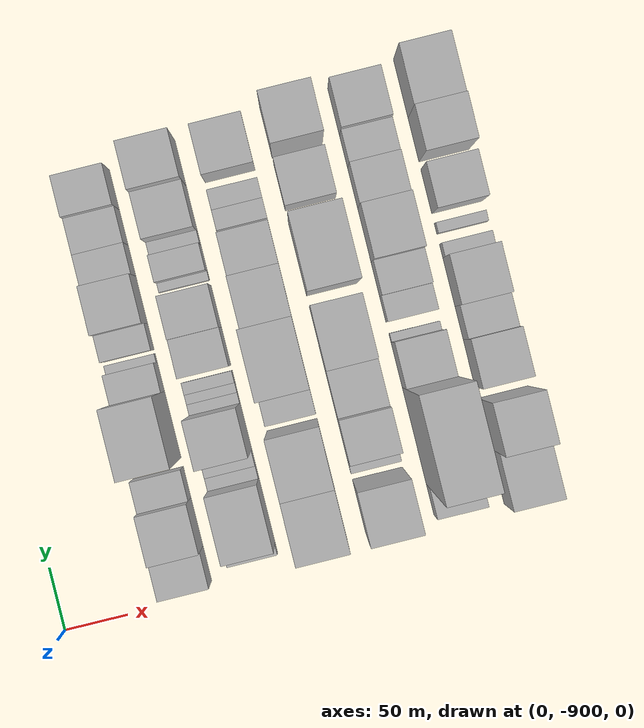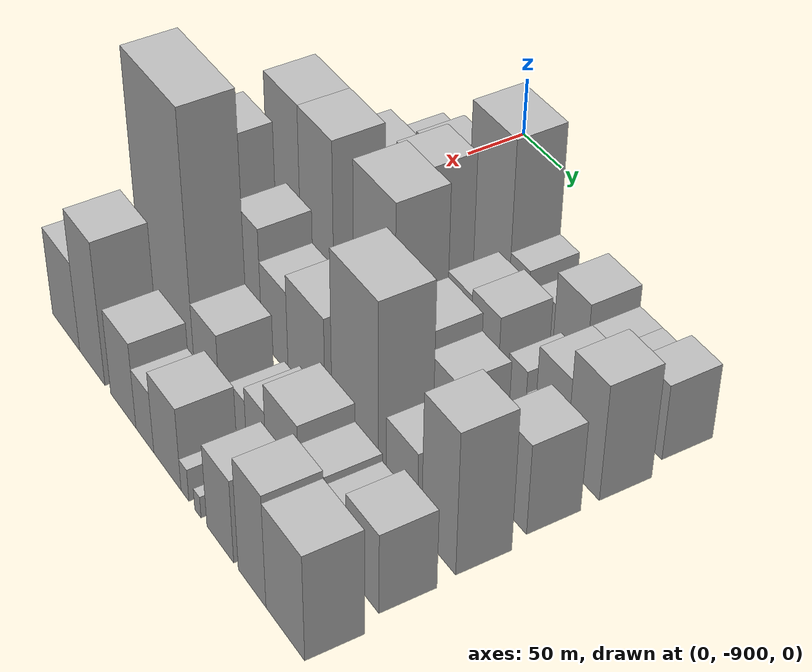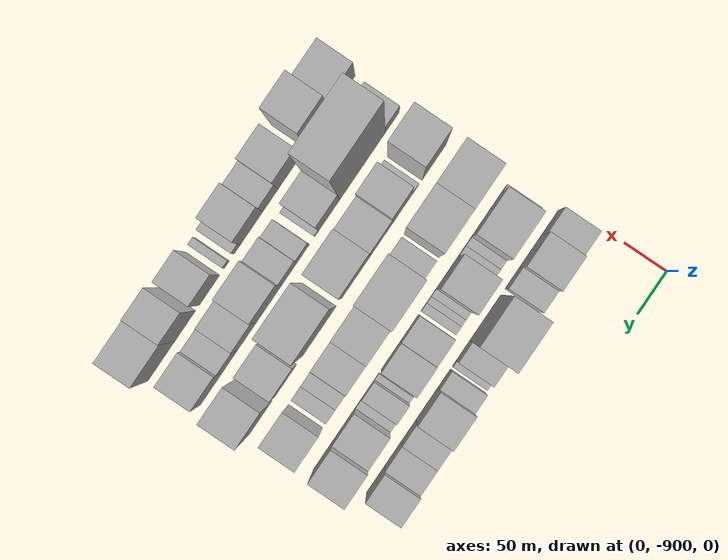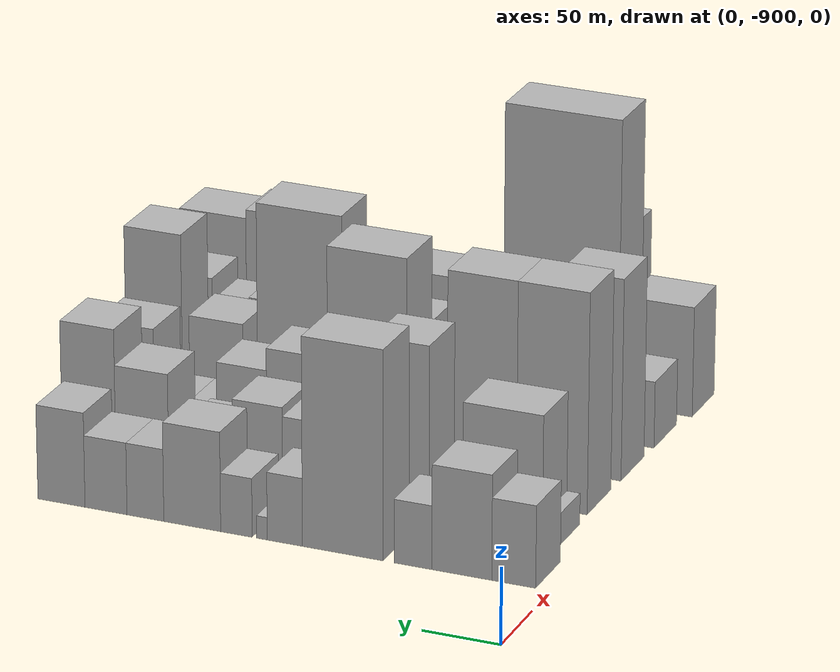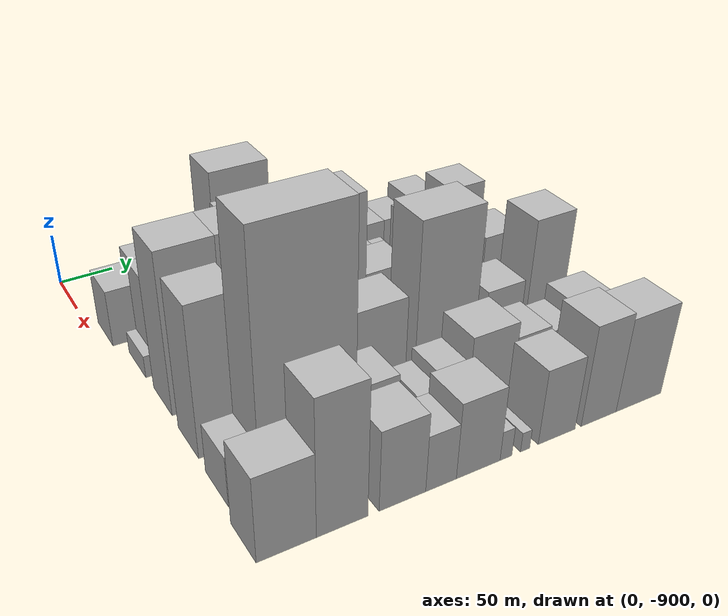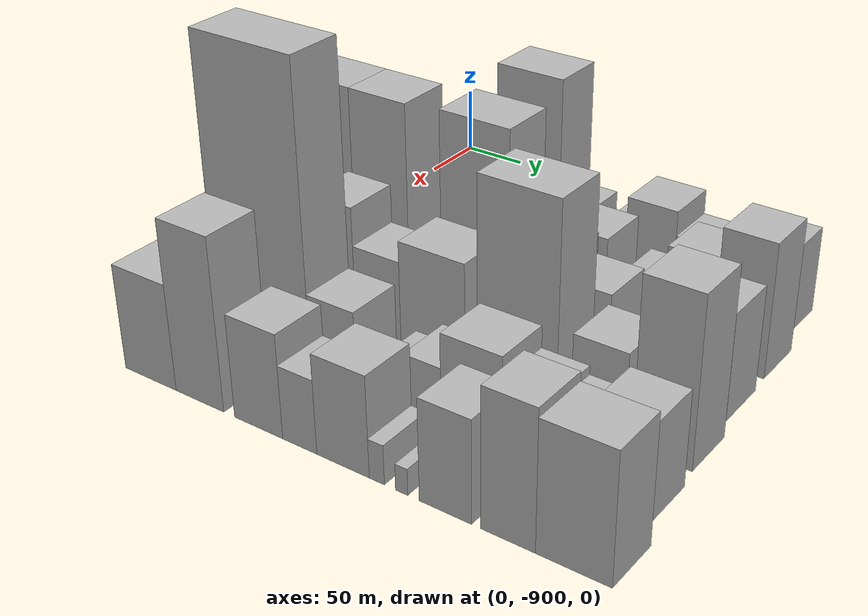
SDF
<sdf version="1.6">
 <world name="default">
  <model name="building_1">
   <static>1</static>
   <pose>100.0000 -875.8655 0 0.000000 0.000000 0.000000</pose>
   <link name="link">
    <pose>0 0 27.00 0 0 0</pose>
    <collision name="collision"><geometry><box><size>40.0000 28.2690 54.0000</size></box></geometry></collision>
    <visual name="visual">
     <cast_shadows>0</cast_shadows>
     <geometry><box><size>40.0000 28.2690 54.0000</size></box></geometry>
     <material>
      <script>
       <uri>model://HANNAS_wall/materials/scripts</uri>
       <uri>model://HANNAS_wall/materials/textures</uri>
       <name>vrc/HANNAS_wall</name>
      </script>
     </material>
    </visual>
   </link>
  </model>
  <model name="building_2">
   <static>1</static>
   <pose>100.0000 -842.3592 0 0.000000 0.000000 0.000000</pose>
   <link name="link">
    <pose>0 0 34.50 0 0 0</pose>
    <collision name="collision"><geometry><box><size>40.0000 38.7436 69.0000</size></box></geometry></collision>
    <visual name="visual">
     <cast_shadows>0</cast_shadows>
     <geometry><box><size>40.0000 38.7436 69.0000</size></box></geometry>
     <material>
      <script>
       <uri>model://HANNAS_wall/materials/scripts</uri>
       <uri>model://HANNAS_wall/materials/textures</uri>
       <name>vrc/HANNAS_wall</name>
      </script>
     </material>
    </visual>
   </link>
  </model>
  <model name="building_3">
   <static>1</static>
   <pose>100.0000 -810.6774 0 0.000000 0.000000 0.000000</pose>
   <link name="link">
    <pose>0 0 21.00 0 0 0</pose>
    <collision name="collision"><geometry><box><size>40.0000 24.6200 42.0000</size></box></geometry></collision>
    <visual name="visual">
     <cast_shadows>0</cast_shadows>
     <geometry><box><size>40.0000 24.6200 42.0000</size></box></geometry>
     <material>
      <script>
       <uri>model://HANNAS_wall/materials/scripts</uri>
       <uri>model://HANNAS_wall/materials/textures</uri>
       <name>vrc/HANNAS_wall</name>
      </script>
     </material>
    </visual>
   </link>
  </model>
  <model name="building_4">
   <static>1</static>
   <pose>100.0000 -764.7874 0 0.000000 0.000000 0.000000</pose>
   <link name="link">
    <pose>0 0 69.00 0 0 0</pose>
    <collision name="collision"><geometry><box><size>40.0000 53.1601 138.0000</size></box></geometry></collision>
    <visual name="visual">
     <cast_shadows>0</cast_shadows>
     <geometry><box><size>40.0000 53.1601 138.0000</size></box></geometry>
     <material>
      <script>
       <uri>model://HANNAS_wall/materials/scripts</uri>
       <uri>model://HANNAS_wall/materials/textures</uri>
       <name>vrc/HANNAS_wall</name>
      </script>
     </material>
    </visual>
   </link>
  </model>
  <model name="building_5">
   <static>1</static>
   <pose>100.0000 -726.5700 0 0.000000 0.000000 0.000000</pose>
   <link name="link">
    <pose>0 0 22.50 0 0 0</pose>
    <collision name="collision"><geometry><box><size>40.0000 23.2748 45.0000</size></box></geometry></collision>
    <visual name="visual">
     <cast_shadows>0</cast_shadows>
     <geometry><box><size>40.0000 23.2748 45.0000</size></box></geometry>
     <material>
      <script>
       <uri>model://HANNAS_wall/materials/scripts</uri>
       <uri>model://HANNAS_wall/materials/textures</uri>
       <name>vrc/HANNAS_wall</name>
      </script>
     </material>
    </visual>
   </link>
  </model>
  <model name="building_6">
   <static>1</static>
   <pose>100.0000 -711.4484 0 0.000000 0.000000 0.000000</pose>
   <link name="link">
    <pose>0 0 7.50 0 0 0</pose>
    <collision name="collision"><geometry><box><size>40.0000 6.9683 15.0000</size></box></geometry></collision>
    <visual name="visual">
     <cast_shadows>0</cast_shadows>
     <geometry><box><size>40.0000 6.9683 15.0000</size></box></geometry>
     <material>
      <script>
       <uri>model://HANNAS_wall/materials/scripts</uri>
       <uri>model://HANNAS_wall/materials/textures</uri>
       <name>vrc/HANNAS_wall</name>
      </script>
     </material>
    </visual>
   </link>
  </model>
  <model name="building_7">
   <static>1</static>
   <pose>100.0000 -694.4781 0 0.000000 0.000000 0.000000</pose>
   <link name="link">
    <pose>0 0 19.50 0 0 0</pose>
    <collision name="collision"><geometry><box><size>40.0000 20.9722 39.0000</size></box></geometry></collision>
    <visual name="visual">
     <cast_shadows>0</cast_shadows>
     <geometry><box><size>40.0000 20.9722 39.0000</size></box></geometry>
     <material>
      <script>
       <uri>model://HANNAS_wall/materials/scripts</uri>
       <uri>model://HANNAS_wall/materials/textures</uri>
       <name>vrc/HANNAS_wall</name>
      </script>
     </material>
    </visual>
   </link>
  </model>
  <model name="building_8">
   <static>1</static>
   <pose>100.0000 -664.9663 0 0.000000 0.000000 0.000000</pose>
   <link name="link">
    <pose>0 0 33.00 0 0 0</pose>
    <collision name="collision"><geometry><box><size>40.0000 38.0515 66.0000</size></box></geometry></collision>
    <visual name="visual">
     <cast_shadows>0</cast_shadows>
     <geometry><box><size>40.0000 38.0515 66.0000</size></box></geometry>
     <material>
      <script>
       <uri>model://HANNAS_wall/materials/scripts</uri>
       <uri>model://HANNAS_wall/materials/textures</uri>
       <name>vrc/HANNAS_wall</name>
      </script>
     </material>
    </visual>
   </link>
  </model>
  <model name="building_9">
   <static>1</static>
   <pose>100.0000 -633.5444 0 0.000000 0.000000 0.000000</pose>
   <link name="link">
    <pose>0 0 24.00 0 0 0</pose>
    <collision name="collision"><geometry><box><size>40.0000 24.7922 48.0000</size></box></geometry></collision>
    <visual name="visual">
     <cast_shadows>0</cast_shadows>
     <geometry><box><size>40.0000 24.7922 48.0000</size></box></geometry>
     <material>
      <script>
       <uri>model://HANNAS_wall/materials/scripts</uri>
       <uri>model://HANNAS_wall/materials/textures</uri>
       <name>vrc/HANNAS_wall</name>
      </script>
     </material>
    </visual>
   </link>
  </model>
  <model name="building_10">
   <static>1</static>
   <pose>100.0000 -606.9436 0 0.000000 0.000000 0.000000</pose>
   <link name="link">
    <pose>0 0 24.00 0 0 0</pose>
    <collision name="collision"><geometry><box><size>40.0000 28.4095 48.0000</size></box></geometry></collision>
    <visual name="visual">
     <cast_shadows>0</cast_shadows>
     <geometry><box><size>40.0000 28.4095 48.0000</size></box></geometry>
     <material>
      <script>
       <uri>model://HANNAS_wall/materials/scripts</uri>
       <uri>model://HANNAS_wall/materials/textures</uri>
       <name>vrc/HANNAS_wall</name>
      </script>
     </material>
    </visual>
   </link>
  </model>
  <model name="building_11">
   <static>1</static>
   <pose>100.0000 -576.7220 0 0.000000 0.000000 0.000000</pose>
   <link name="link">
    <pose>0 0 31.50 0 0 0</pose>
    <collision name="collision"><geometry><box><size>40.0000 32.0336 63.0000</size></box></geometry></collision>
    <visual name="visual">
     <cast_shadows>0</cast_shadows>
     <geometry><box><size>40.0000 32.0336 63.0000</size></box></geometry>
     <material>
      <script>
       <uri>model://HANNAS_wall/materials/scripts</uri>
       <uri>model://HANNAS_wall/materials/textures</uri>
       <name>vrc/HANNAS_wall</name>
      </script>
     </material>
    </visual>
   </link>
  </model>
  <model name="building_53">
   <static>1</static>
   <pose>155.0000 -876.6834 0 0.000000 0.000000 0.000000</pose>
   <link name="link">
    <pose>0 0 10.50 0 0 0</pose>
    <collision name="collision"><geometry><box><size>40.0000 8.6332 21.0000</size></box></geometry></collision>
    <visual name="visual">
     <cast_shadows>0</cast_shadows>
     <geometry><box><size>40.0000 8.6332 21.0000</size></box></geometry>
     <material>
      <script>
       <uri>model://HANNAS_wall/materials/scripts</uri>
       <uri>model://HANNAS_wall/materials/textures</uri>
       <name>vrc/HANNAS_wall</name>
      </script>
     </material>
    </visual>
   </link>
  </model>
  <model name="building_54">
   <static>1</static>
   <pose>155.0000 -846.3705 0 0.000000 0.000000 0.000000</pose>
   <link name="link">
    <pose>0 0 43.50 0 0 0</pose>
    <collision name="collision"><geometry><box><size>40.0000 51.9926 87.0000</size></box></geometry></collision>
    <visual name="visual">
     <cast_shadows>0</cast_shadows>
     <geometry><box><size>40.0000 51.9926 87.0000</size></box></geometry>
     <material>
      <script>
       <uri>model://HANNAS_wall/materials/scripts</uri>
       <uri>model://HANNAS_wall/materials/textures</uri>
       <name>vrc/HANNAS_wall</name>
      </script>
     </material>
    </visual>
   </link>
  </model>
  <model name="building_55">
   <static>1</static>
   <pose>155.0000 -815.2840 0 0.000000 0.000000 0.000000</pose>
   <link name="link">
    <pose>0 0 12.00 0 0 0</pose>
    <collision name="collision"><geometry><box><size>40.0000 10.1804 24.0000</size></box></geometry></collision>
    <visual name="visual">
     <cast_shadows>0</cast_shadows>
     <geometry><box><size>40.0000 10.1804 24.0000</size></box></geometry>
     <material>
      <script>
       <uri>model://HANNAS_wall/materials/scripts</uri>
       <uri>model://HANNAS_wall/materials/textures</uri>
       <name>vrc/HANNAS_wall</name>
      </script>
     </material>
    </visual>
   </link>
  </model>
  <model name="building_56">
   <static>1</static>
   <pose>155.0000 -804.1719 0 0.000000 0.000000 0.000000</pose>
   <link name="link">
    <pose>0 0 13.50 0 0 0</pose>
    <collision name="collision"><geometry><box><size>40.0000 12.0438 27.0000</size></box></geometry></collision>
    <visual name="visual">
     <cast_shadows>0</cast_shadows>
     <geometry><box><size>40.0000 12.0438 27.0000</size></box></geometry>
     <material>
      <script>
       <uri>model://HANNAS_wall/materials/scripts</uri>
       <uri>model://HANNAS_wall/materials/textures</uri>
       <name>vrc/HANNAS_wall</name>
      </script>
     </material>
    </visual>
   </link>
  </model>
  <model name="building_57">
   <static>1</static>
   <pose>155.0000 -779.5093 0 0.000000 0.000000 0.000000</pose>
   <link name="link">
    <pose>0 0 60.00 0 0 0</pose>
    <collision name="collision"><geometry><box><size>40.0000 37.2814 120.0000</size></box></geometry></collision>
    <visual name="visual">
     <cast_shadows>0</cast_shadows>
     <geometry><box><size>40.0000 37.2814 120.0000</size></box></geometry>
     <material>
      <script>
       <uri>model://HANNAS_wall/materials/scripts</uri>
       <uri>model://HANNAS_wall/materials/textures</uri>
       <name>vrc/HANNAS_wall</name>
      </script>
     </material>
    </visual>
   </link>
  </model>
  <model name="building_58">
   <static>1</static>
   <pose>155.0000 -756.5754 0 0.000000 0.000000 0.000000</pose>
   <link name="link">
    <pose>0 0 9.00 0 0 0</pose>
    <collision name="collision"><geometry><box><size>40.0000 8.5863 18.0000</size></box></geometry></collision>
    <visual name="visual">
     <cast_shadows>0</cast_shadows>
     <geometry><box><size>40.0000 8.5863 18.0000</size></box></geometry>
     <material>
      <script>
       <uri>model://HANNAS_wall/materials/scripts</uri>
       <uri>model://HANNAS_wall/materials/textures</uri>
       <name>vrc/HANNAS_wall</name>
      </script>
     </material>
    </visual>
   </link>
  </model>
  <model name="building_59">
   <static>1</static>
   <pose>155.0000 -748.4291 0 0.000000 0.000000 0.000000</pose>
   <link name="link">
    <pose>0 0 9.00 0 0 0</pose>
    <collision name="collision"><geometry><box><size>40.0000 7.7064 18.0000</size></box></geometry></collision>
    <visual name="visual">
     <cast_shadows>0</cast_shadows>
     <geometry><box><size>40.0000 7.7064 18.0000</size></box></geometry>
     <material>
      <script>
       <uri>model://HANNAS_wall/materials/scripts</uri>
       <uri>model://HANNAS_wall/materials/textures</uri>
       <name>vrc/HANNAS_wall</name>
      </script>
     </material>
    </visual>
   </link>
  </model>
  <model name="building_60">
   <static>1</static>
   <pose>155.0000 -739.8344 0 0.000000 0.000000 0.000000</pose>
   <link name="link">
    <pose>0 0 10.50 0 0 0</pose>
    <collision name="collision"><geometry><box><size>40.0000 9.4830 21.0000</size></box></geometry></collision>
    <visual name="visual">
     <cast_shadows>0</cast_shadows>
     <geometry><box><size>40.0000 9.4830 21.0000</size></box></geometry>
     <material>
      <script>
       <uri>model://HANNAS_wall/materials/scripts</uri>
       <uri>model://HANNAS_wall/materials/textures</uri>
       <name>vrc/HANNAS_wall</name>
      </script>
     </material>
    </visual>
   </link>
  </model>
  <model name="building_61">
   <static>1</static>
   <pose>155.0000 -715.9722 0 0.000000 0.000000 0.000000</pose>
   <link name="link">
    <pose>0 0 28.50 0 0 0</pose>
    <collision name="collision"><geometry><box><size>40.0000 30.2414 57.0000</size></box></geometry></collision>
    <visual name="visual">
     <cast_shadows>0</cast_shadows>
     <geometry><box><size>40.0000 30.2414 57.0000</size></box></geometry>
     <material>
      <script>
       <uri>model://HANNAS_wall/materials/scripts</uri>
       <uri>model://HANNAS_wall/materials/textures</uri>
       <name>vrc/HANNAS_wall</name>
      </script>
     </material>
    </visual>
   </link>
  </model>
  <model name="building_62">
   <static>1</static>
   <pose>155.0000 -684.0424 0 0.000000 0.000000 0.000000</pose>
   <link name="link">
    <pose>0 0 31.50 0 0 0</pose>
    <collision name="collision"><geometry><box><size>40.0000 33.6181 63.0000</size></box></geometry></collision>
    <visual name="visual">
     <cast_shadows>0</cast_shadows>
     <geometry><box><size>40.0000 33.6181 63.0000</size></box></geometry>
     <material>
      <script>
       <uri>model://HANNAS_wall/materials/scripts</uri>
       <uri>model://HANNAS_wall/materials/textures</uri>
       <name>vrc/HANNAS_wall</name>
      </script>
     </material>
    </visual>
   </link>
  </model>
  <model name="building_63">
   <static>1</static>
   <pose>155.0000 -659.5913 0 0.000000 0.000000 0.000000</pose>
   <link name="link">
    <pose>0 0 7.50 0 0 0</pose>
    <collision name="collision"><geometry><box><size>40.0000 7.2841 15.0000</size></box></geometry></collision>
    <visual name="visual">
     <cast_shadows>0</cast_shadows>
     <geometry><box><size>40.0000 7.2841 15.0000</size></box></geometry>
     <material>
      <script>
       <uri>model://HANNAS_wall/materials/scripts</uri>
       <uri>model://HANNAS_wall/materials/textures</uri>
       <name>vrc/HANNAS_wall</name>
      </script>
     </material>
    </visual>
   </link>
  </model>
  <model name="building_64">
   <static>1</static>
   <pose>155.0000 -645.3218 0 0.000000 0.000000 0.000000</pose>
   <link name="link">
    <pose>0 0 21.00 0 0 0</pose>
    <collision name="collision"><geometry><box><size>40.0000 21.2549 42.0000</size></box></geometry></collision>
    <visual name="visual">
     <cast_shadows>0</cast_shadows>
     <geometry><box><size>40.0000 21.2549 42.0000</size></box></geometry>
     <material>
      <script>
       <uri>model://HANNAS_wall/materials/scripts</uri>
       <uri>model://HANNAS_wall/materials/textures</uri>
       <name>vrc/HANNAS_wall</name>
      </script>
     </material>
    </visual>
   </link>
  </model>
  <model name="building_65">
   <static>1</static>
   <pose>155.0000 -629.2701 0 0.000000 0.000000 0.000000</pose>
   <link name="link">
    <pose>0 0 12.00 0 0 0</pose>
    <collision name="collision"><geometry><box><size>40.0000 10.8485 24.0000</size></box></geometry></collision>
    <visual name="visual">
     <cast_shadows>0</cast_shadows>
     <geometry><box><size>40.0000 10.8485 24.0000</size></box></geometry>
     <material>
      <script>
       <uri>model://HANNAS_wall/materials/scripts</uri>
       <uri>model://HANNAS_wall/materials/textures</uri>
       <name>vrc/HANNAS_wall</name>
      </script>
     </material>
    </visual>
   </link>
  </model>
  <model name="building_66">
   <static>1</static>
   <pose>155.0000 -605.8002 0 0.000000 0.000000 0.000000</pose>
   <link name="link">
    <pose>0 0 36.00 0 0 0</pose>
    <collision name="collision"><geometry><box><size>40.0000 36.0914 72.0000</size></box></geometry></collision>
    <visual name="visual">
     <cast_shadows>0</cast_shadows>
     <geometry><box><size>40.0000 36.0914 72.0000</size></box></geometry>
     <material>
      <script>
       <uri>model://HANNAS_wall/materials/scripts</uri>
       <uri>model://HANNAS_wall/materials/textures</uri>
       <name>vrc/HANNAS_wall</name>
      </script>
     </material>
    </visual>
   </link>
  </model>
  <model name="building_67">
   <static>1</static>
   <pose>155.0000 -569.3853 0 0.000000 0.000000 0.000000</pose>
   <link name="link">
    <pose>0 0 48.00 0 0 0</pose>
    <collision name="collision"><geometry><box><size>40.0000 36.7385 96.0000</size></box></geometry></collision>
    <visual name="visual">
     <cast_shadows>0</cast_shadows>
     <geometry><box><size>40.0000 36.7385 96.0000</size></box></geometry>
     <material>
      <script>
       <uri>model://HANNAS_wall/materials/scripts</uri>
       <uri>model://HANNAS_wall/materials/textures</uri>
       <name>vrc/HANNAS_wall</name>
      </script>
     </material>
    </visual>
   </link>
  </model>
  <model name="building_112">
   <static>1</static>
   <pose>210.0000 -856.6553 0 0.000000 0.000000 0.000000</pose>
   <link name="link">
    <pose>0 0 73.50 0 0 0</pose>
    <collision name="collision"><geometry><box><size>40.0000 46.6894 147.0000</size></box></geometry></collision>
    <visual name="visual">
     <cast_shadows>0</cast_shadows>
     <geometry><box><size>40.0000 46.6894 147.0000</size></box></geometry>
     <material>
      <script>
       <uri>model://HANNAS_wall/materials/scripts</uri>
       <uri>model://HANNAS_wall/materials/textures</uri>
       <name>vrc/HANNAS_wall</name>
      </script>
     </material>
    </visual>
   </link>
  </model>
  <model name="building_113">
   <static>1</static>
   <pose>210.0000 -810.2821 0 0.000000 0.000000 0.000000</pose>
   <link name="link">
    <pose>0 0 73.50 0 0 0</pose>
    <collision name="collision"><geometry><box><size>40.0000 46.0571 147.0000</size></box></geometry></collision>
    <visual name="visual">
     <cast_shadows>0</cast_shadows>
     <geometry><box><size>40.0000 46.0571 147.0000</size></box></geometry>
     <material>
      <script>
       <uri>model://HANNAS_wall/materials/scripts</uri>
       <uri>model://HANNAS_wall/materials/textures</uri>
       <name>vrc/HANNAS_wall</name>
      </script>
     </material>
    </visual>
   </link>
  </model>
  <model name="building_114">
   <static>1</static>
   <pose>210.0000 -771.2694 0 0.000000 0.000000 0.000000</pose>
   <link name="link">
    <pose>0 0 21.00 0 0 0</pose>
    <collision name="collision"><geometry><box><size>40.0000 21.9683 42.0000</size></box></geometry></collision>
    <visual name="visual">
     <cast_shadows>0</cast_shadows>
     <geometry><box><size>40.0000 21.9683 42.0000</size></box></geometry>
     <material>
      <script>
       <uri>model://HANNAS_wall/materials/scripts</uri>
       <uri>model://HANNAS_wall/materials/textures</uri>
       <name>vrc/HANNAS_wall</name>
      </script>
     </material>
    </visual>
   </link>
  </model>
  <model name="building_115">
   <static>1</static>
   <pose>210.0000 -733.6573 0 0.000000 0.000000 0.000000</pose>
   <link name="link">
    <pose>0 0 75.00 0 0 0</pose>
    <collision name="collision"><geometry><box><size>40.0000 53.2559 150.0000</size></box></geometry></collision>
    <visual name="visual">
     <cast_shadows>0</cast_shadows>
     <geometry><box><size>40.0000 53.2559 150.0000</size></box></geometry>
     <material>
      <script>
       <uri>model://HANNAS_wall/materials/scripts</uri>
       <uri>model://HANNAS_wall/materials/textures</uri>
       <name>vrc/HANNAS_wall</name>
      </script>
     </material>
    </visual>
   </link>
  </model>
  <model name="building_116">
   <static>1</static>
   <pose>210.0000 -686.3649 0 0.000000 0.000000 0.000000</pose>
   <link name="link">
    <pose>0 0 37.50 0 0 0</pose>
    <collision name="collision"><geometry><box><size>40.0000 41.3288 75.0000</size></box></geometry></collision>
    <visual name="visual">
     <cast_shadows>0</cast_shadows>
     <geometry><box><size>40.0000 41.3288 75.0000</size></box></geometry>
     <material>
      <script>
       <uri>model://HANNAS_wall/materials/scripts</uri>
       <uri>model://HANNAS_wall/materials/textures</uri>
       <name>vrc/HANNAS_wall</name>
      </script>
     </material>
    </visual>
   </link>
  </model>
  <model name="building_117">
   <static>1</static>
   <pose>210.0000 -648.6435 0 0.000000 0.000000 0.000000</pose>
   <link name="link">
    <pose>0 0 30.00 0 0 0</pose>
    <collision name="collision"><geometry><box><size>40.0000 34.1139 60.0000</size></box></geometry></collision>
    <visual name="visual">
     <cast_shadows>0</cast_shadows>
     <geometry><box><size>40.0000 34.1139 60.0000</size></box></geometry>
     <material>
      <script>
       <uri>model://HANNAS_wall/materials/scripts</uri>
       <uri>model://HANNAS_wall/materials/textures</uri>
       <name>vrc/HANNAS_wall</name>
      </script>
     </material>
    </visual>
   </link>
  </model>
  <model name="building_118">
   <static>1</static>
   <pose>210.0000 -620.5166 0 0.000000 0.000000 0.000000</pose>
   <link name="link">
    <pose>0 0 15.00 0 0 0</pose>
    <collision name="collision"><geometry><box><size>40.0000 16.1400 30.0000</size></box></geometry></collision>
    <visual name="visual">
     <cast_shadows>0</cast_shadows>
     <geometry><box><size>40.0000 16.1400 30.0000</size></box></geometry>
     <material>
      <script>
       <uri>model://HANNAS_wall/materials/scripts</uri>
       <uri>model://HANNAS_wall/materials/textures</uri>
       <name>vrc/HANNAS_wall</name>
      </script>
     </material>
    </visual>
   </link>
  </model>
  <model name="building_119">
   <static>1</static>
   <pose>210.0000 -604.4878 0 0.000000 0.000000 0.000000</pose>
   <link name="link">
    <pose>0 0 15.00 0 0 0</pose>
    <collision name="collision"><geometry><box><size>40.0000 15.9175 30.0000</size></box></geometry></collision>
    <visual name="visual">
     <cast_shadows>0</cast_shadows>
     <geometry><box><size>40.0000 15.9175 30.0000</size></box></geometry>
     <material>
      <script>
       <uri>model://HANNAS_wall/materials/scripts</uri>
       <uri>model://HANNAS_wall/materials/textures</uri>
       <name>vrc/HANNAS_wall</name>
      </script>
     </material>
    </visual>
   </link>
  </model>
  <model name="building_120">
   <static>1</static>
   <pose>210.0000 -569.1086 0 0.000000 0.000000 0.000000</pose>
   <link name="link">
    <pose>0 0 37.50 0 0 0</pose>
    <collision name="collision"><geometry><box><size>40.0000 38.8408 75.0000</size></box></geometry></collision>
    <visual name="visual">
     <cast_shadows>0</cast_shadows>
     <geometry><box><size>40.0000 38.8408 75.0000</size></box></geometry>
     <material>
      <script>
       <uri>model://HANNAS_wall/materials/scripts</uri>
       <uri>model://HANNAS_wall/materials/textures</uri>
       <name>vrc/HANNAS_wall</name>
      </script>
     </material>
    </visual>
   </link>
  </model>
  <model name="building_162">
   <static>1</static>
   <pose>265.0000 -860.4773 0 0.000000 0.000000 0.000000</pose>
   <link name="link">
    <pose>0 0 67.50 0 0 0</pose>
    <collision name="collision"><geometry><box><size>40.0000 41.0455 135.0000</size></box></geometry></collision>
    <visual name="visual">
     <cast_shadows>0</cast_shadows>
     <geometry><box><size>40.0000 41.0455 135.0000</size></box></geometry>
     <material>
      <script>
       <uri>model://HANNAS_wall/materials/scripts</uri>
       <uri>model://HANNAS_wall/materials/textures</uri>
       <name>vrc/HANNAS_wall</name>
      </script>
     </material>
    </visual>
   </link>
  </model>
  <model name="building_163">
   <static>1</static>
   <pose>265.0000 -828.6247 0 0.000000 0.000000 0.000000</pose>
   <link name="link">
    <pose>0 0 12.00 0 0 0</pose>
    <collision name="collision"><geometry><box><size>40.0000 10.6597 24.0000</size></box></geometry></collision>
    <visual name="visual">
     <cast_shadows>0</cast_shadows>
     <geometry><box><size>40.0000 10.6597 24.0000</size></box></geometry>
     <material>
      <script>
       <uri>model://HANNAS_wall/materials/scripts</uri>
       <uri>model://HANNAS_wall/materials/textures</uri>
       <name>vrc/HANNAS_wall</name>
      </script>
     </material>
    </visual>
   </link>
  </model>
  <model name="building_164">
   <static>1</static>
   <pose>265.0000 -806.0242 0 0.000000 0.000000 0.000000</pose>
   <link name="link">
    <pose>0 0 48.00 0 0 0</pose>
    <collision name="collision"><geometry><box><size>40.0000 34.5413 96.0000</size></box></geometry></collision>
    <visual name="visual">
     <cast_shadows>0</cast_shadows>
     <geometry><box><size>40.0000 34.5413 96.0000</size></box></geometry>
     <material>
      <script>
       <uri>model://HANNAS_wall/materials/scripts</uri>
       <uri>model://HANNAS_wall/materials/textures</uri>
       <name>vrc/HANNAS_wall</name>
      </script>
     </material>
    </visual>
   </link>
  </model>
  <model name="building_165">
   <static>1</static>
   <pose>265.0000 -770.3912 0 0.000000 0.000000 0.000000</pose>
   <link name="link">
    <pose>0 0 34.50 0 0 0</pose>
    <collision name="collision"><geometry><box><size>40.0000 36.7247 69.0000</size></box></geometry></collision>
    <visual name="visual">
     <cast_shadows>0</cast_shadows>
     <geometry><box><size>40.0000 36.7247 69.0000</size></box></geometry>
     <material>
      <script>
       <uri>model://HANNAS_wall/materials/scripts</uri>
       <uri>model://HANNAS_wall/materials/textures</uri>
       <name>vrc/HANNAS_wall</name>
      </script>
     </material>
    </visual>
   </link>
  </model>
  <model name="building_166">
   <static>1</static>
   <pose>265.0000 -726.9992 0 0.000000 0.000000 0.000000</pose>
   <link name="link">
    <pose>0 0 42.00 0 0 0</pose>
    <collision name="collision"><geometry><box><size>40.0000 50.0594 84.0000</size></box></geometry></collision>
    <visual name="visual">
     <cast_shadows>0</cast_shadows>
     <geometry><box><size>40.0000 50.0594 84.0000</size></box></geometry>
     <material>
      <script>
       <uri>model://HANNAS_wall/materials/scripts</uri>
       <uri>model://HANNAS_wall/materials/textures</uri>
       <name>vrc/HANNAS_wall</name>
      </script>
     </material>
    </visual>
   </link>
  </model>
  <model name="building_167">
   <static>1</static>
   <pose>265.0000 -663.9536 0 0.000000 0.000000 0.000000</pose>
   <link name="link">
    <pose>0 0 73.50 0 0 0</pose>
    <collision name="collision"><geometry><box><size>40.0000 58.0319 147.0000</size></box></geometry></collision>
    <visual name="visual">
     <cast_shadows>0</cast_shadows>
     <geometry><box><size>40.0000 58.0319 147.0000</size></box></geometry>
     <material>
      <script>
       <uri>model://HANNAS_wall/materials/scripts</uri>
       <uri>model://HANNAS_wall/materials/textures</uri>
       <name>vrc/HANNAS_wall</name>
      </script>
     </material>
    </visual>
   </link>
  </model>
  <model name="building_168">
   <static>1</static>
   <pose>265.0000 -606.2955 0 0.000000 0.000000 0.000000</pose>
   <link name="link">
    <pose>0 0 31.50 0 0 0</pose>
    <collision name="collision"><geometry><box><size>40.0000 37.2843 63.0000</size></box></geometry></collision>
    <visual name="visual">
     <cast_shadows>0</cast_shadows>
     <geometry><box><size>40.0000 37.2843 63.0000</size></box></geometry>
     <material>
      <script>
       <uri>model://HANNAS_wall/materials/scripts</uri>
       <uri>model://HANNAS_wall/materials/textures</uri>
       <name>vrc/HANNAS_wall</name>
      </script>
     </material>
    </visual>
   </link>
  </model>
  <model name="building_169">
   <static>1</static>
   <pose>265.0000 -562.9568 0 0.000000 0.000000 0.000000</pose>
   <link name="link">
    <pose>0 0 58.50 0 0 0</pose>
    <collision name="collision"><geometry><box><size>40.0000 39.3931 117.0000</size></box></geometry></collision>
    <visual name="visual">
     <cast_shadows>0</cast_shadows>
     <geometry><box><size>40.0000 39.3931 117.0000</size></box></geometry>
     <material>
      <script>
       <uri>model://HANNAS_wall/materials/scripts</uri>
       <uri>model://HANNAS_wall/materials/textures</uri>
       <name>vrc/HANNAS_wall</name>
      </script>
     </material>
    </visual>
   </link>
  </model>
  <model name="building_214">
   <static>1</static>
   <pose>320.0000 -869.7552 0 0.000000 0.000000 0.000000</pose>
   <link name="link">
    <pose>0 0 22.50 0 0 0</pose>
    <collision name="collision"><geometry><box><size>40.0000 24.4895 45.0000</size></box></geometry></collision>
    <visual name="visual">
     <cast_shadows>0</cast_shadows>
     <geometry><box><size>40.0000 24.4895 45.0000</size></box></geometry>
     <material>
      <script>
       <uri>model://HANNAS_wall/materials/scripts</uri>
       <uri>model://HANNAS_wall/materials/textures</uri>
       <name>vrc/HANNAS_wall</name>
      </script>
     </material>
    </visual>
   </link>
  </model>
  <model name="building_215">
   <static>1</static>
   <pose>320.0000 -818.7305 0 0.000000 0.000000 0.000000</pose>
   <link name="link">
    <pose>0 0 108.00 0 0 0</pose>
    <collision name="collision"><geometry><box><size>40.0000 77.5600 216.0000</size></box></geometry></collision>
    <visual name="visual">
     <cast_shadows>0</cast_shadows>
     <geometry><box><size>40.0000 77.5600 216.0000</size></box></geometry>
     <material>
      <script>
       <uri>model://HANNAS_wall/materials/scripts</uri>
       <uri>model://HANNAS_wall/materials/textures</uri>
       <name>vrc/HANNAS_wall</name>
      </script>
     </material>
    </visual>
   </link>
  </model>
  <model name="building_216">
   <static>1</static>
   <pose>320.0000 -761.7962 0 0.000000 0.000000 0.000000</pose>
   <link name="link">
    <pose>0 0 31.50 0 0 0</pose>
    <collision name="collision"><geometry><box><size>40.0000 36.3085 63.0000</size></box></geometry></collision>
    <visual name="visual">
     <cast_shadows>0</cast_shadows>
     <geometry><box><size>40.0000 36.3085 63.0000</size></box></geometry>
     <material>
      <script>
       <uri>model://HANNAS_wall/materials/scripts</uri>
       <uri>model://HANNAS_wall/materials/textures</uri>
       <name>vrc/HANNAS_wall</name>
      </script>
     </material>
    </visual>
   </link>
  </model>
  <model name="building_217">
   <static>1</static>
   <pose>320.0000 -740.1864 0 0.000000 0.000000 0.000000</pose>
   <link name="link">
    <pose>0 0 7.50 0 0 0</pose>
    <collision name="collision"><geometry><box><size>40.0000 6.9112 15.0000</size></box></geometry></collision>
    <visual name="visual">
     <cast_shadows>0</cast_shadows>
     <geometry><box><size>40.0000 6.9112 15.0000</size></box></geometry>
     <material>
      <script>
       <uri>model://HANNAS_wall/materials/scripts</uri>
       <uri>model://HANNAS_wall/materials/textures</uri>
       <name>vrc/HANNAS_wall</name>
      </script>
     </material>
    </visual>
   </link>
  </model>
  <model name="building_218">
   <static>1</static>
   <pose>320.0000 -717.4469 0 0.000000 0.000000 0.000000</pose>
   <link name="link">
    <pose>0 0 18.00 0 0 0</pose>
    <collision name="collision"><geometry><box><size>40.0000 20.5677 36.0000</size></box></geometry></collision>
    <visual name="visual">
     <cast_shadows>0</cast_shadows>
     <geometry><box><size>40.0000 20.5677 36.0000</size></box></geometry>
     <material>
      <script>
       <uri>model://HANNAS_wall/materials/scripts</uri>
       <uri>model://HANNAS_wall/materials/textures</uri>
       <name>vrc/HANNAS_wall</name>
      </script>
     </material>
    </visual>
   </link>
  </model>
  <model name="building_219">
   <static>1</static>
   <pose>320.0000 -693.5256 0 0.000000 0.000000 0.000000</pose>
   <link name="link">
    <pose>0 0 24.00 0 0 0</pose>
    <collision name="collision"><geometry><box><size>40.0000 27.2749 48.0000</size></box></geometry></collision>
    <visual name="visual">
     <cast_shadows>0</cast_shadows>
     <geometry><box><size>40.0000 27.2749 48.0000</size></box></geometry>
     <material>
      <script>
       <uri>model://HANNAS_wall/materials/scripts</uri>
       <uri>model://HANNAS_wall/materials/textures</uri>
       <name>vrc/HANNAS_wall</name>
      </script>
     </material>
    </visual>
   </link>
  </model>
  <model name="building_220">
   <static>1</static>
   <pose>320.0000 -658.3891 0 0.000000 0.000000 0.000000</pose>
   <link name="link">
    <pose>0 0 36.00 0 0 0</pose>
    <collision name="collision"><geometry><box><size>40.0000 42.9982 72.0000</size></box></geometry></collision>
    <visual name="visual">
     <cast_shadows>0</cast_shadows>
     <geometry><box><size>40.0000 42.9982 72.0000</size></box></geometry>
     <material>
      <script>
       <uri>model://HANNAS_wall/materials/scripts</uri>
       <uri>model://HANNAS_wall/materials/textures</uri>
       <name>vrc/HANNAS_wall</name>
      </script>
     </material>
    </visual>
   </link>
  </model>
  <model name="building_221">
   <static>1</static>
   <pose>320.0000 -620.6341 0 0.000000 0.000000 0.000000</pose>
   <link name="link">
    <pose>0 0 28.50 0 0 0</pose>
    <collision name="collision"><geometry><box><size>40.0000 32.5118 57.0000</size></box></geometry></collision>
    <visual name="visual">
     <cast_shadows>0</cast_shadows>
     <geometry><box><size>40.0000 32.5118 57.0000</size></box></geometry>
     <material>
      <script>
       <uri>model://HANNAS_wall/materials/scripts</uri>
       <uri>model://HANNAS_wall/materials/textures</uri>
       <name>vrc/HANNAS_wall</name>
      </script>
     </material>
    </visual>
   </link>
  </model>
  <model name="building_222">
   <static>1</static>
   <pose>320.0000 -591.5113 0 0.000000 0.000000 0.000000</pose>
   <link name="link">
    <pose>0 0 25.50 0 0 0</pose>
    <collision name="collision"><geometry><box><size>40.0000 25.7338 51.0000</size></box></geometry></collision>
    <visual name="visual">
     <cast_shadows>0</cast_shadows>
     <geometry><box><size>40.0000 25.7338 51.0000</size></box></geometry>
     <material>
      <script>
       <uri>model://HANNAS_wall/materials/scripts</uri>
       <uri>model://HANNAS_wall/materials/textures</uri>
       <name>vrc/HANNAS_wall</name>
      </script>
     </material>
    </visual>
   </link>
  </model>
  <model name="building_223">
   <static>1</static>
   <pose>320.0000 -559.4513 0 0.000000 0.000000 0.000000</pose>
   <link name="link">
    <pose>0 0 33.00 0 0 0</pose>
    <collision name="collision"><geometry><box><size>40.0000 38.3862 66.0000</size></box></geometry></collision>
    <visual name="visual">
     <cast_shadows>0</cast_shadows>
     <geometry><box><size>40.0000 38.3862 66.0000</size></box></geometry>
     <material>
      <script>
       <uri>model://HANNAS_wall/materials/scripts</uri>
       <uri>model://HANNAS_wall/materials/textures</uri>
       <name>vrc/HANNAS_wall</name>
      </script>
     </material>
    </visual>
   </link>
  </model>
  <model name="building_265">
   <static>1</static>
   <pose>375.0000 -864.7355 0 0.000000 0.000000 0.000000</pose>
   <link name="link">
    <pose>0 0 37.50 0 0 0</pose>
    <collision name="collision"><geometry><box><size>40.0000 44.5289 75.0000</size></box></geometry></collision>
    <visual name="visual">
     <cast_shadows>0</cast_shadows>
     <geometry><box><size>40.0000 44.5289 75.0000</size></box></geometry>
     <material>
      <script>
       <uri>model://HANNAS_wall/materials/scripts</uri>
       <uri>model://HANNAS_wall/materials/textures</uri>
       <name>vrc/HANNAS_wall</name>
      </script>
     </material>
    </visual>
   </link>
  </model>
  <model name="building_266">
   <static>1</static>
   <pose>375.0000 -822.4006 0 0.000000 0.000000 0.000000</pose>
   <link name="link">
    <pose>0 0 60.00 0 0 0</pose>
    <collision name="collision"><geometry><box><size>40.0000 40.1409 120.0000</size></box></geometry></collision>
    <visual name="visual">
     <cast_shadows>0</cast_shadows>
     <geometry><box><size>40.0000 40.1409 120.0000</size></box></geometry>
     <material>
      <script>
       <uri>model://HANNAS_wall/materials/scripts</uri>
       <uri>model://HANNAS_wall/materials/textures</uri>
       <name>vrc/HANNAS_wall</name>
      </script>
     </material>
    </visual>
   </link>
  </model>
  <model name="building_267">
   <static>1</static>
   <pose>375.0000 -774.1418 0 0.000000 0.000000 0.000000</pose>
   <link name="link">
    <pose>0 0 36.00 0 0 0</pose>
    <collision name="collision"><geometry><box><size>40.0000 38.3766 72.0000</size></box></geometry></collision>
    <visual name="visual">
     <cast_shadows>0</cast_shadows>
     <geometry><box><size>40.0000 38.3766 72.0000</size></box></geometry>
     <material>
      <script>
       <uri>model://HANNAS_wall/materials/scripts</uri>
       <uri>model://HANNAS_wall/materials/textures</uri>
       <name>vrc/HANNAS_wall</name>
      </script>
     </material>
    </visual>
   </link>
  </model>
  <model name="building_268">
   <static>1</static>
   <pose>375.0000 -741.8245 0 0.000000 0.000000 0.000000</pose>
   <link name="link">
    <pose>0 0 25.50 0 0 0</pose>
    <collision name="collision"><geometry><box><size>40.0000 26.2580 51.0000</size></box></geometry></collision>
    <visual name="visual">
     <cast_shadows>0</cast_shadows>
     <geometry><box><size>40.0000 26.2580 51.0000</size></box></geometry>
     <material>
      <script>
       <uri>model://HANNAS_wall/materials/scripts</uri>
       <uri>model://HANNAS_wall/materials/textures</uri>
       <name>vrc/HANNAS_wall</name>
      </script>
     </material>
    </visual>
   </link>
  </model>
  <model name="building_269">
   <static>1</static>
   <pose>375.0000 -709.2964 0 0.000000 0.000000 0.000000</pose>
   <link name="link">
    <pose>0 0 34.50 0 0 0</pose>
    <collision name="collision"><geometry><box><size>40.0000 38.7983 69.0000</size></box></geometry></collision>
    <visual name="visual">
     <cast_shadows>0</cast_shadows>
     <geometry><box><size>40.0000 38.7983 69.0000</size></box></geometry>
     <material>
      <script>
       <uri>model://HANNAS_wall/materials/scripts</uri>
       <uri>model://HANNAS_wall/materials/textures</uri>
       <name>vrc/HANNAS_wall</name>
      </script>
     </material>
    </visual>
   </link>
  </model>
  <model name="building_270">
   <static>1</static>
   <pose>375.0000 -684.4733 0 0.000000 0.000000 0.000000</pose>
   <link name="link">
    <pose>0 0 13.50 0 0 0</pose>
    <collision name="collision"><geometry><box><size>40.0000 10.8477 27.0000</size></box></geometry></collision>
    <visual name="visual">
     <cast_shadows>0</cast_shadows>
     <geometry><box><size>40.0000 10.8477 27.0000</size></box></geometry>
     <material>
      <script>
       <uri>model://HANNAS_wall/materials/scripts</uri>
       <uri>model://HANNAS_wall/materials/textures</uri>
       <name>vrc/HANNAS_wall</name>
      </script>
     </material>
    </visual>
   </link>
  </model>
  <model name="building_271">
   <static>1</static>
   <pose>375.0000 -666.7599 0 0.000000 0.000000 0.000000</pose>
   <link name="link">
    <pose>0 0 9.00 0 0 0</pose>
    <collision name="collision"><geometry><box><size>40.0000 8.5790 18.0000</size></box></geometry></collision>
    <visual name="visual">
     <cast_shadows>0</cast_shadows>
     <geometry><box><size>40.0000 8.5790 18.0000</size></box></geometry>
     <material>
      <script>
       <uri>model://HANNAS_wall/materials/scripts</uri>
       <uri>model://HANNAS_wall/materials/textures</uri>
       <name>vrc/HANNAS_wall</name>
      </script>
     </material>
    </visual>
   </link>
  </model>
  <model name="building_272">
   <static>1</static>
   <pose>375.0000 -636.7360 0 0.000000 0.000000 0.000000</pose>
   <link name="link">
    <pose>0 0 34.50 0 0 0</pose>
    <collision name="collision"><geometry><box><size>40.0000 35.4688 69.0000</size></box></geometry></collision>
    <visual name="visual">
     <cast_shadows>0</cast_shadows>
     <geometry><box><size>40.0000 35.4688 69.0000</size></box></geometry>
     <material>
      <script>
       <uri>model://HANNAS_wall/materials/scripts</uri>
       <uri>model://HANNAS_wall/materials/textures</uri>
       <name>vrc/HANNAS_wall</name>
      </script>
     </material>
    </visual>
   </link>
  </model>
  <model name="building_273">
   <static>1</static>
   <pose>375.0000 -595.4290 0 0.000000 0.000000 0.000000</pose>
   <link name="link">
    <pose>0 0 46.50 0 0 0</pose>
    <collision name="collision"><geometry><box><size>40.0000 35.1454 93.0000</size></box></geometry></collision>
    <visual name="visual">
     <cast_shadows>0</cast_shadows>
     <geometry><box><size>40.0000 35.1454 93.0000</size></box></geometry>
     <material>
      <script>
       <uri>model://HANNAS_wall/materials/scripts</uri>
       <uri>model://HANNAS_wall/materials/textures</uri>
       <name>vrc/HANNAS_wall</name>
      </script>
     </material>
    </visual>
   </link>
  </model>
  <model name="building_274">
   <static>1</static>
   <pose>375.0000 -554.3636 0 0.000000 0.000000 0.000000</pose>
   <link name="link">
    <pose>0 0 43.50 0 0 0</pose>
    <collision name="collision"><geometry><box><size>40.0000 46.9852 87.0000</size></box></geometry></collision>
    <visual name="visual">
     <cast_shadows>0</cast_shadows>
     <geometry><box><size>40.0000 46.9852 87.0000</size></box></geometry>
     <material>
      <script>
       <uri>model://HANNAS_wall/materials/scripts</uri>
       <uri>model://HANNAS_wall/materials/textures</uri>
       <name>vrc/HANNAS_wall</name>
      </script>
     </material>
    </visual>
   </link>
  </model>
 </world>
</sdf>
